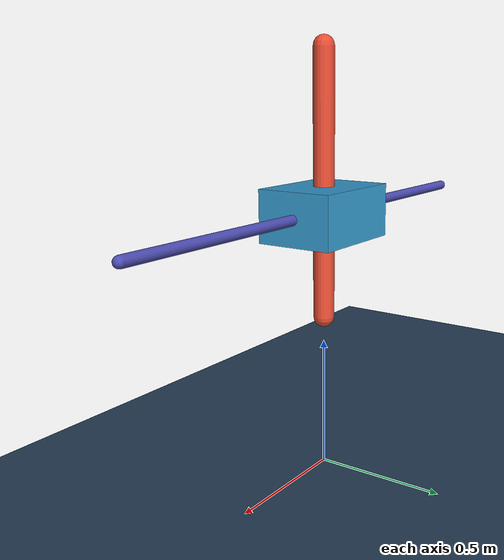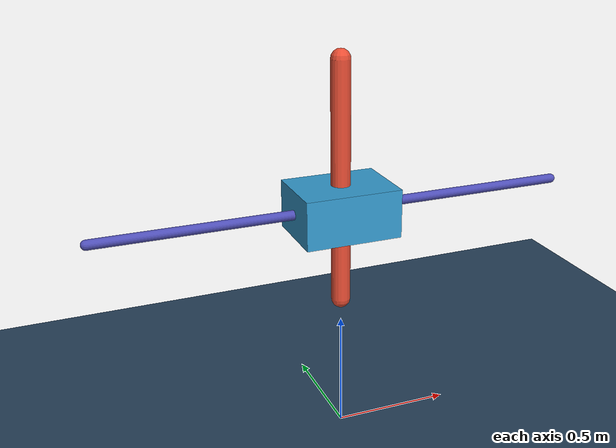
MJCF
<mujoco model="cartpole">
  <option timestep="0.005" gravity="0 0 -9.81"/>

  <visual>
    <headlight ambient="0.4 0.4 0.4" diffuse="0.6 0.6 0.6" specular="0.1 0.1 0.1"/>
    <rgba haze="0.15 0.25 0.35 1"/>
  </visual>

  <worldbody>
    <light pos="0 0 5" dir="0 0 -1" directional="true"/>
    <geom name="rail" type="capsule" size="0.02 1" rgba="0.3 0.3 0.7 1"
          pos="0 0 1" euler="0 90 0" contype="0" conaffinity="0"/>
    <geom name="floor" type="plane" size="5 5 0.05" material="grid"/>

    <body name="cart" pos="0 0 1">
      <joint name="slider" type="slide" axis="1 0 0" limited="true"
             range="-1 1" damping="0.1"/>
      <geom name="cart_geom" type="box" size="0.2 0.15 0.1" mass="5"
            rgba="0.2 0.6 0.8 1"/>

      <body name="pole" pos="0 0 0.1">
        <joint name="hinge" type="hinge" axis="0 1 0" damping="0.002"/>
        <geom name="pole_geom" type="capsule" size="0.04 0.5" mass="1"
              rgba="0.9 0.3 0.2 1" euler="0 0 0"/>
      </body>
    </body>
  </worldbody>

  <actuator>
    <motor name="slide_motor" joint="slider" ctrllimited="true"
           ctrlrange="-10 10" gear="50"/>
  </actuator>

  <asset>
    <texture type="skybox" builtin="gradient" rgb1="0.1 0.1 0.2"
             rgb2="0 0 0" width="512" height="512"/>
    <texture name="grid" type="2d" builtin="checker" rgb1=".1 .2 .3"
             rgb2=".2 .3 .4" width="512" height="512" mark="edge"
             markrgb=".8 .8 .8"/>
    <material name="grid" texture="grid" texrepeat="1 1"
              texuniform="true" reflectance=".2"/>
  </asset>
</mujoco>
